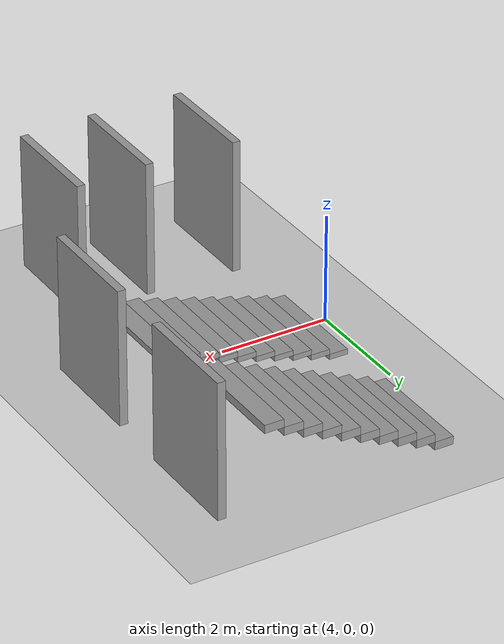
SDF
<sdf version="1.7">
 <world name="default">
  <model name="ground_plane">
   <static>1</static>
   <link name="link">
    <collision name="collision">
     <geometry><plane><normal>0 0 1</normal><size>100 100</size></plane></geometry>
     <surface>
      <contact><collide_bitmask>65535</collide_bitmask></contact>
      <friction><ode><mu>100</mu><mu2>50</mu2></ode></friction>
     </surface>
    </collision>
    <visual name="visual">
     <cast_shadows>0</cast_shadows>
     <geometry><plane><normal>0 0 1</normal><size>100 100</size></plane></geometry>
     <material>
      <script><uri>file://media/materials/scripts/gazebo.material</uri><name>Gazebo/Grey</name></script>
     </material>
    </visual>
   </link>
  </model>
  <model name="test_state">
   <pose>6 0 0 0 -0 1.57</pose>
   <link name="Stairs_5">
    <visual name="Stairs_5_Visual_0">
     <pose>0.0925 1.5725 0.05 0 -0 0</pose>
     <geometry><box><size>2 0.35 0.1</size></box></geometry>
     <material>
      <script><uri>file://media/materials/scripts/gazebo.material</uri><name>Gazebo/Grey</name></script>
      <ambient>1 1 1 1</ambient>
     </material>
     <meta><layer>0</layer></meta>
    </visual>
    <collision name="Stairs_5_Collision_0">
     <geometry><box><size>2 0.35 0.1</size></box></geometry>
     <pose>0.0925 1.5725 0.05 0 -0 0</pose>
    </collision>
    <visual name="Stairs_5_Visual_1">
     <pose>0.0925 1.2225 0.15 0 -0 0</pose>
     <geometry><box><size>2 0.35 0.1</size></box></geometry>
     <material>
      <script><uri>file://media/materials/scripts/gazebo.material</uri><name>Gazebo/Grey</name></script>
      <ambient>1 1 1 1</ambient>
     </material>
     <meta><layer>0</layer></meta>
    </visual>
    <collision name="Stairs_5_Collision_1">
     <geometry><box><size>2 0.35 0.1</size></box></geometry>
     <pose>0.0925 1.2225 0.15 0 -0 0</pose>
    </collision>
    <visual name="Stairs_5_Visual_2">
     <pose>0.0925 0.8725 0.25 0 -0 0</pose>
     <geometry><box><size>2 0.35 0.1</size></box></geometry>
     <material>
      <script><uri>file://media/materials/scripts/gazebo.material</uri><name>Gazebo/Grey</name></script>
      <ambient>1 1 1 1</ambient>
     </material>
     <meta><layer>0</layer></meta>
    </visual>
    <collision name="Stairs_5_Collision_2">
     <geometry><box><size>2 0.35 0.1</size></box></geometry>
     <pose>0.0925 0.8725 0.25 0 -0 0</pose>
    </collision>
    <visual name="Stairs_5_Visual_3">
     <pose>0.0925 0.5225 0.35 0 -0 0</pose>
     <geometry><box><size>2 0.35 0.1</size></box></geometry>
     <material>
      <script><uri>file://media/materials/scripts/gazebo.material</uri><name>Gazebo/Grey</name></script>
      <ambient>1 1 1 1</ambient>
     </material>
     <meta><layer>0</layer></meta>
    </visual>
    <collision name="Stairs_5_Collision_3">
     <geometry><box><size>2 0.35 0.1</size></box></geometry>
     <pose>0.0925 0.5225 0.35 0 -0 0</pose>
    </collision>
    <visual name="Stairs_5_Visual_4">
     <pose>0.0925 0.1725 0.45 0 -0 0</pose>
     <geometry><box><size>2 0.35 0.1</size></box></geometry>
     <material>
      <script><uri>file://media/materials/scripts/gazebo.material</uri><name>Gazebo/Grey</name></script>
      <ambient>1 1 1 1</ambient>
     </material>
     <meta><layer>0</layer></meta>
    </visual>
    <collision name="Stairs_5_Collision_4">
     <geometry><box><size>2 0.35 0.1</size></box></geometry>
     <pose>0.0925 0.1725 0.45 0 -0 0</pose>
    </collision>
    <visual name="Stairs_5_Visual_5">
     <pose>0.0925 -0.1775 0.55 0 -0 0</pose>
     <geometry><box><size>2 0.35 0.1</size></box></geometry>
     <material>
      <script><uri>file://media/materials/scripts/gazebo.material</uri><name>Gazebo/Grey</name></script>
      <ambient>1 1 1 1</ambient>
     </material>
     <meta><layer>0</layer></meta>
    </visual>
    <collision name="Stairs_5_Collision_5">
     <geometry><box><size>2 0.35 0.1</size></box></geometry>
     <pose>0.0925 -0.1775 0.55 0 -0 0</pose>
    </collision>
    <visual name="Stairs_5_Visual_6">
     <pose>0.0925 -0.5275 0.65 0 -0 0</pose>
     <geometry><box><size>2 0.35 0.1</size></box></geometry>
     <material>
      <script><uri>file://media/materials/scripts/gazebo.material</uri><name>Gazebo/Grey</name></script>
      <ambient>1 1 1 1</ambient>
     </material>
     <meta><layer>0</layer></meta>
    </visual>
    <collision name="Stairs_5_Collision_6">
     <geometry><box><size>2 0.35 0.1</size></box></geometry>
     <pose>0.0925 -0.5275 0.65 0 -0 0</pose>
    </collision>
    <visual name="Stairs_5_Visual_7">
     <pose>0.0925 -0.8775 0.75 0 -0 0</pose>
     <geometry><box><size>2 0.35 0.1</size></box></geometry>
     <material>
      <script><uri>file://media/materials/scripts/gazebo.material</uri><name>Gazebo/Grey</name></script>
      <ambient>1 1 1 1</ambient>
     </material>
     <meta><layer>0</layer></meta>
    </visual>
    <collision name="Stairs_5_Collision_7">
     <geometry><box><size>2 0.35 0.1</size></box></geometry>
     <pose>0.0925 -0.8775 0.75 0 -0 0</pose>
    </collision>
    <visual name="Stairs_5_Visual_8">
     <pose>0.0925 -1.2275 0.85 0 -0 0</pose>
     <geometry><box><size>2 0.35 0.1</size></box></geometry>
     <material>
      <script><uri>file://media/materials/scripts/gazebo.material</uri><name>Gazebo/Grey</name></script>
      <ambient>1 1 1 1</ambient>
     </material>
     <meta><layer>0</layer></meta>
    </visual>
    <collision name="Stairs_5_Collision_8">
     <geometry><box><size>2 0.35 0.1</size></box></geometry>
     <pose>0.0925 -1.2275 0.85 0 -0 0</pose>
    </collision>
    <visual name="Stairs_5_Visual_9">
     <pose>0.0925 -1.5775 0.95 0 -0 0</pose>
     <geometry><box><size>2 0.35 0.1</size></box></geometry>
     <material>
      <script><uri>file://media/materials/scripts/gazebo.material</uri><name>Gazebo/Grey</name></script>
      <ambient>1 1 1 1</ambient>
     </material>
     <meta><layer>0</layer></meta>
    </visual>
    <collision name="Stairs_5_Collision_9">
     <geometry><box><size>2 0.35 0.1</size></box></geometry>
     <pose>0.0925 -1.5775 0.95 0 -0 0</pose>
    </collision>
   </link>
   <link name="Stairs_7">
    <visual name="Stairs_7_Visual_0">
     <pose>3.2425 1.5825 0.075 0 -0 0</pose>
     <geometry><box><size>2 0.35 0.15</size></box></geometry>
     <material>
      <script><uri>file://media/materials/scripts/gazebo.material</uri><name>Gazebo/Grey</name></script>
      <ambient>1 1 1 1</ambient>
     </material>
     <meta><layer>0</layer></meta>
    </visual>
    <collision name="Stairs_7_Collision_0">
     <geometry><box><size>2 0.35 0.15</size></box></geometry>
     <pose>3.2425 1.5825 0.075 0 -0 0</pose>
    </collision>
    <visual name="Stairs_7_Visual_1">
     <pose>3.2425 1.2325 0.225 0 -0 0</pose>
     <geometry><box><size>2 0.35 0.15</size></box></geometry>
     <material>
      <script><uri>file://media/materials/scripts/gazebo.material</uri><name>Gazebo/Grey</name></script>
      <ambient>1 1 1 1</ambient>
     </material>
     <meta><layer>0</layer></meta>
    </visual>
    <collision name="Stairs_7_Collision_1">
     <geometry><box><size>2 0.35 0.15</size></box></geometry>
     <pose>3.2425 1.2325 0.225 0 -0 0</pose>
    </collision>
    <visual name="Stairs_7_Visual_2">
     <pose>3.2425 0.8825 0.375 0 -0 0</pose>
     <geometry><box><size>2 0.35 0.15</size></box></geometry>
     <material>
      <script><uri>file://media/materials/scripts/gazebo.material</uri><name>Gazebo/Grey</name></script>
      <ambient>1 1 1 1</ambient>
     </material>
     <meta><layer>0</layer></meta>
    </visual>
    <collision name="Stairs_7_Collision_2">
     <geometry><box><size>2 0.35 0.15</size></box></geometry>
     <pose>3.2425 0.8825 0.375 0 -0 0</pose>
    </collision>
    <visual name="Stairs_7_Visual_3">
     <pose>3.2425 0.5325 0.525 0 -0 0</pose>
     <geometry><box><size>2 0.35 0.15</size></box></geometry>
     <material>
      <script><uri>file://media/materials/scripts/gazebo.material</uri><name>Gazebo/Grey</name></script>
      <ambient>1 1 1 1</ambient>
     </material>
     <meta><layer>0</layer></meta>
    </visual>
    <collision name="Stairs_7_Collision_3">
     <geometry><box><size>2 0.35 0.15</size></box></geometry>
     <pose>3.2425 0.5325 0.525 0 -0 0</pose>
    </collision>
    <visual name="Stairs_7_Visual_4">
     <pose>3.2425 0.1825 0.675 0 -0 0</pose>
     <geometry><box><size>2 0.35 0.15</size></box></geometry>
     <material>
      <script><uri>file://media/materials/scripts/gazebo.material</uri><name>Gazebo/Grey</name></script>
      <ambient>1 1 1 1</ambient>
     </material>
     <meta><layer>0</layer></meta>
    </visual>
    <collision name="Stairs_7_Collision_4">
     <geometry><box><size>2 0.35 0.15</size></box></geometry>
     <pose>3.2425 0.1825 0.675 0 -0 0</pose>
    </collision>
    <visual name="Stairs_7_Visual_5">
     <pose>3.2425 -0.1675 0.825 0 -0 0</pose>
     <geometry><box><size>2 0.35 0.15</size></box></geometry>
     <material>
      <script><uri>file://media/materials/scripts/gazebo.material</uri><name>Gazebo/Grey</name></script>
      <ambient>1 1 1 1</ambient>
     </material>
     <meta><layer>0</layer></meta>
    </visual>
    <collision name="Stairs_7_Collision_5">
     <geometry><box><size>2 0.35 0.15</size></box></geometry>
     <pose>3.2425 -0.1675 0.825 0 -0 0</pose>
    </collision>
    <visual name="Stairs_7_Visual_6">
     <pose>3.2425 -0.5175 0.975 0 -0 0</pose>
     <geometry><box><size>2 0.35 0.15</size></box></geometry>
     <material>
      <script><uri>file://media/materials/scripts/gazebo.material</uri><name>Gazebo/Grey</name></script>
      <ambient>1 1 1 1</ambient>
     </material>
     <meta><layer>0</layer></meta>
    </visual>
    <collision name="Stairs_7_Collision_6">
     <geometry><box><size>2 0.35 0.15</size></box></geometry>
     <pose>3.2425 -0.5175 0.975 0 -0 0</pose>
    </collision>
    <visual name="Stairs_7_Visual_7">
     <pose>3.2425 -0.8675 1.125 0 -0 0</pose>
     <geometry><box><size>2 0.35 0.15</size></box></geometry>
     <material>
      <script><uri>file://media/materials/scripts/gazebo.material</uri><name>Gazebo/Grey</name></script>
      <ambient>1 1 1 1</ambient>
     </material>
     <meta><layer>0</layer></meta>
    </visual>
    <collision name="Stairs_7_Collision_7">
     <geometry><box><size>2 0.35 0.15</size></box></geometry>
     <pose>3.2425 -0.8675 1.125 0 -0 0</pose>
    </collision>
    <visual name="Stairs_7_Visual_8">
     <pose>3.2425 -1.2175 1.275 0 -0 0</pose>
     <geometry><box><size>2 0.35 0.15</size></box></geometry>
     <material>
      <script><uri>file://media/materials/scripts/gazebo.material</uri><name>Gazebo/Grey</name></script>
      <ambient>1 1 1 1</ambient>
     </material>
     <meta><layer>0</layer></meta>
    </visual>
    <collision name="Stairs_7_Collision_8">
     <geometry><box><size>2 0.35 0.15</size></box></geometry>
     <pose>3.2425 -1.2175 1.275 0 -0 0</pose>
    </collision>
    <visual name="Stairs_7_Visual_9">
     <pose>3.2425 -1.5675 1.425 0 -0 0</pose>
     <geometry><box><size>2 0.35 0.15</size></box></geometry>
     <material>
      <script><uri>file://media/materials/scripts/gazebo.material</uri><name>Gazebo/Grey</name></script>
      <ambient>1 1 1 1</ambient>
     </material>
     <meta><layer>0</layer></meta>
    </visual>
    <collision name="Stairs_7_Collision_9">
     <geometry><box><size>2 0.35 0.15</size></box></geometry>
     <pose>3.2425 -1.5675 1.425 0 -0 0</pose>
    </collision>
   </link>
   <link name="Wall_0">
    <collision name="Wall_0_Collision">
     <geometry><box><size>2 0.15 2.5</size></box></geometry>
     <pose>0 0 1.25 0 -0 0</pose>
    </collision>
    <visual name="Wall_0_Visual">
     <pose>0 0 1.25 0 -0 0</pose>
     <geometry><box><size>2 0.15 2.5</size></box></geometry>
     <material>
      <script><uri>file://media/materials/scripts/gazebo.material</uri><name>Gazebo/Grey</name></script>
      <ambient>1 1 1 1</ambient>
     </material>
     <meta><layer>0</layer></meta>
    </visual>
    <pose>-3.1625 1.5475 0 0 -0 3.14159</pose>
   </link>
   <link name="Wall_2">
    <collision name="Wall_2_Collision">
     <geometry><box><size>2 0.15 2.5</size></box></geometry>
     <pose>0 0 1.25 0 -0 0</pose>
    </collision>
    <visual name="Wall_2_Visual">
     <pose>0 0 1.25 0 -0 0</pose>
     <geometry><box><size>2 0.15 2.5</size></box></geometry>
     <material>
      <script><uri>file://media/materials/scripts/gazebo.material</uri><name>Gazebo/Grey</name></script>
      <ambient>1 1 1 1</ambient>
     </material>
     <meta><layer>0</layer></meta>
    </visual>
    <pose>-3.1725 -1.4125 0 0 -0 3.14159</pose>
   </link>
   <link name="Wall_4">
    <collision name="Wall_4_Collision">
     <geometry><box><size>2 0.15 2.5</size></box></geometry>
     <pose>0 0 1.25 0 -0 0</pose>
    </collision>
    <visual name="Wall_4_Visual">
     <pose>0 0 1.25 0 -0 0</pose>
     <geometry><box><size>2 0.15 2.5</size></box></geometry>
     <material>
      <script><uri>file://media/materials/scripts/gazebo.material</uri><name>Gazebo/Grey</name></script>
      <ambient>1 1 1 1</ambient>
     </material>
     <meta><layer>0</layer></meta>
    </visual>
    <pose>0.0975 -2.4725 0 0 -0 3.14159</pose>
   </link>
   <link name="Wall_6">
    <collision name="Wall_6_Collision">
     <geometry><box><size>2 0.15 2.5</size></box></geometry>
     <pose>0 0 1.25 0 -0 0</pose>
    </collision>
    <visual name="Wall_6_Visual">
     <pose>0 0 1.25 0 -0 0</pose>
     <geometry><box><size>2 0.15 2.5</size></box></geometry>
     <material>
      <script><uri>file://media/materials/scripts/gazebo.material</uri><name>Gazebo/Grey</name></script>
      <ambient>1 1 1 1</ambient>
     </material>
     <meta><layer>0</layer></meta>
    </visual>
    <pose>3.2075 -2.4825 0 0 -0 3.14159</pose>
   </link>
   <link name="Wall_8">
    <collision name="Wall_8_Collision">
     <geometry><box><size>2 0.15 2.5</size></box></geometry>
     <pose>0 0 1.25 0 -0 0</pose>
    </collision>
    <visual name="Wall_8_Visual">
     <pose>0 0 1.25 0 -0 0</pose>
     <geometry><box><size>2 0.15 2.5</size></box></geometry>
     <material>
      <script><uri>file://media/materials/scripts/gazebo.material</uri><name>Gazebo/Grey</name></script>
      <ambient>1 1 1 1</ambient>
     </material>
     <meta><layer>0</layer></meta>
    </visual>
    <pose>-3.2425 -0.0825 0 0 -0 3.14159</pose>
   </link>
   <static>1</static>
  </model>
 </world>
</sdf>
